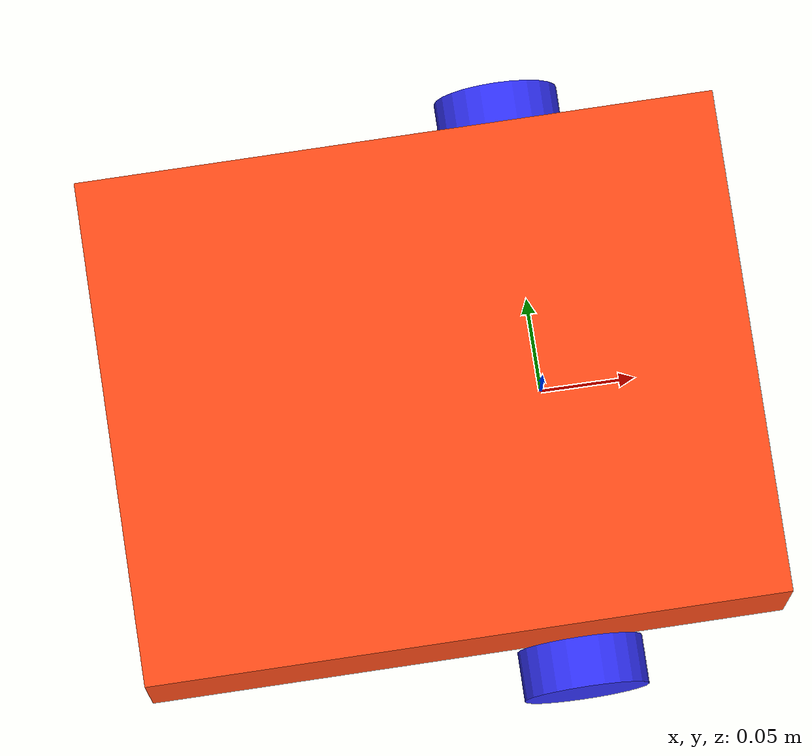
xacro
<?xml version="1.0"?>
<robot name="mobile_robot" xmlns:xacro="http://www.ros.org/wiki/xacro" >

    <xacro:include filename="inertial_macros.xacro"/>

    <xacro:property name="chassis_length" value="0.335"/>
    <xacro:property name="chassis_width" value="0.265"/>
    <xacro:property name="chassis_height" value="0.08"/>
    <xacro:property name="chassis_mass" value="1.0"/>
    <xacro:property name="wheel_radius" value="0.033"/>
    <xacro:property name="wheel_thickness" value="0.026"/>
    <xacro:property name="wheel_mass" value="0.05"/>
    <xacro:property name="wheel_offset_x" value="0.226"/>
    <xacro:property name="wheel_offset_y" value="0.1485"/>
    <xacro:property name="wheel_offset_z" value="0.01"/>
    <xacro:property name="caster_wheel_radius" value="0.033"/>
    <xacro:property name="caster_wheel_mass" value="0.01"/>
    <xacro:property name="caster_wheel_offset_x" value="0.075"/>
    <xacro:property name="caster_wheel_offset_z" value="${wheel_offset_z - wheel_radius + caster_wheel_radius}"/>

    <material name="white">
        <color rgba="1 1 1 1" />
    </material>

    <material name="orange">
        <color rgba="1 0.3 0.1 1"/>
    </material>

    <material name="blue">
        <color rgba="0.2 0.2 1 1"/>
    </material>

    <material name="black">
        <color rgba="0 0 0 1"/>
    </material>

    <material name="red">
        <color rgba="1 0 0 1"/>
    </material>

    <!-- BASE LINK -->

    <link name="base_link">

    </link>

    <!-- CHASSIS LINK -->

    <joint name="chassis_joint" type="fixed">
        <parent link="base_link"/>
        <child link="chassis"/>
        <origin xyz="${-wheel_offset_x} 0 ${-wheel_offset_z}"/>
    </joint>

    <link name="chassis">
        <visual>
            <origin xyz="${chassis_length/2} 0 ${chassis_height/2}"/>
            <geometry>
                <box size="${chassis_length} ${chassis_width} ${chassis_height}"/>
            </geometry>
            <material name="orange"/>
        </visual>
        <collision>
            <origin xyz="${chassis_length/2} 0 ${chassis_height/2}"/>
            <geometry>
                <box size="${chassis_length} ${chassis_width} ${chassis_height}"/>
            </geometry>
        </collision>
        <xacro:inertial_box mass="0.5" x="${chassis_length}" y="${chassis_width}" z="${chassis_height}">
            <origin xyz="${chassis_length/2} 0 ${chassis_height/2}" rpy="0 0 0"/>
        </xacro:inertial_box>
    </link>

    <gazebo reference="chassis">
        <material>Gazebo/Orange</material>
    </gazebo>

    <!-- LEFT WHEEL LINK -->

    <joint name="left_wheel_joint" type="continuous">
        <parent link="base_link"/>
        <child link="left_wheel"/>
        <origin xyz="0 ${wheel_offset_y} 0" rpy="-${pi/2} 0 0" />
        <axis xyz="0 0 1"/>
    </joint>

    <link name="left_wheel">
        <visual>
            <geometry>
                <cylinder radius="${wheel_radius}" length="${wheel_thickness}"/>
            </geometry>
            <material name="blue"/>
        </visual>
        <collision>
            <geometry>
                <sphere radius="${wheel_radius}"/>
            </geometry>
        </collision>
        <xacro:inertial_cylinder mass="${wheel_mass}" length="${wheel_thickness}" radius="${wheel_radius}">
            <origin xyz="0 0 0" rpy="0 0 0"/>
        </xacro:inertial_cylinder>
    </link>

    <gazebo reference="left_wheel">
        <material>Gazebo/Blue</material>
    </gazebo>

    <!-- RIGHT WHEEL LINK -->

    <joint name="right_wheel_joint" type="continuous">
        <parent link="base_link"/>
        <child link="right_wheel"/>
        <origin xyz="0 ${-wheel_offset_y} 0" rpy="${pi/2} 0 0" />
        <axis xyz="0 0 -1"/>
    </joint>

    <link name="right_wheel">
        <visual>
            <geometry>
                <cylinder radius="${wheel_radius}" length="${wheel_thickness}"/>
            </geometry>
            <material name="blue"/>
        </visual>
        <collision>
            <geometry>
                <sphere radius="${wheel_radius}"/>
            </geometry>
        </collision>
        <xacro:inertial_cylinder mass="${wheel_mass}" length="${wheel_thickness}" radius="${wheel_radius}">
            <origin xyz="0 0 0" rpy="0 0 0"/>
        </xacro:inertial_cylinder>
    </link>

    <gazebo reference="right_wheel">
        <material>Gazebo/Blue</material>
    </gazebo>

    <!-- CASTER WHEEL LINK -->

    <joint name="caster_wheel_joint" type="fixed">
        <parent link="chassis"/>
        <child link="caster_wheel"/>
        <origin xyz="${caster_wheel_offset_x} 0 ${caster_wheel_offset_z}"/>
    </joint>

    <link name="caster_wheel">
        <visual>
            <geometry>
                <sphere radius="${caster_wheel_radius}"/>
            </geometry>
            <material name="white"/>
        </visual>
        <collision>
            <geometry>
                <sphere radius="${caster_wheel_radius}"/>
            </geometry>
        </collision>
        <xacro:inertial_sphere mass="${caster_wheel_mass}" radius="${caster_wheel_radius}">
            <origin xyz="0 0 0" rpy="0 0 0"/>
        </xacro:inertial_sphere>
    </link>

    <gazebo reference="caster_wheel">
        <material>Gazebo/White</material>
        <mu1 value="0.001"/>
        <mu2 value="0.001"/>
    </gazebo>

    <gazebo>
        <plugin name="gazebo_ros_control" filename="libgazebo_ros_control.so">
        </plugin>
    </gazebo>

    <transmission name="tran1">
        <type>transmission_interface/SimpleTransmission</type>
        <joint name="left_wheel_joint">
            <hardwareInterface>hardware_interface/EffortJointInterface</hardwareInterface>
        </joint>
        <actuator name="motor1">
            <hardwareInterface>hardware_interface/EffortJointInterface</hardwareInterface>
            <mechanicalReduction>1</mechanicalReduction>
        </actuator>
    </transmission>

    <transmission name="tran2">
        <type>transmission_interface/SimpleTransmission</type>
        <joint name="right_wheel_joint">
            <hardwareInterface>hardware_interface/EffortJointInterface</hardwareInterface>
        </joint>
        <actuator name="motor2">
            <hardwareInterface>hardware_interface/EffortJointInterface</hardwareInterface>
            <mechanicalReduction>1</mechanicalReduction>
        </actuator>
    </transmission>

</robot>
